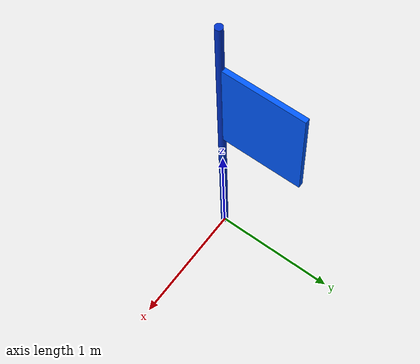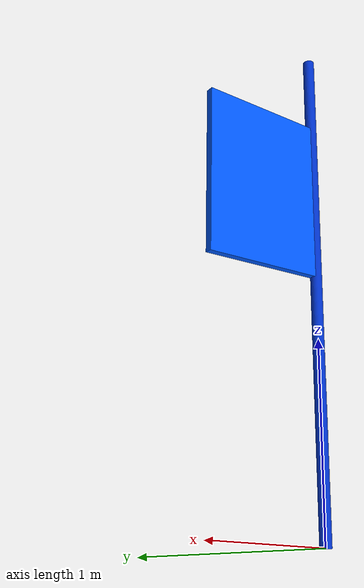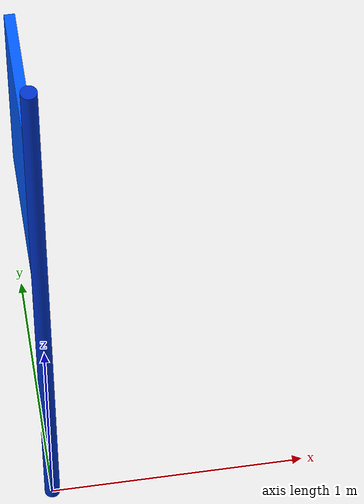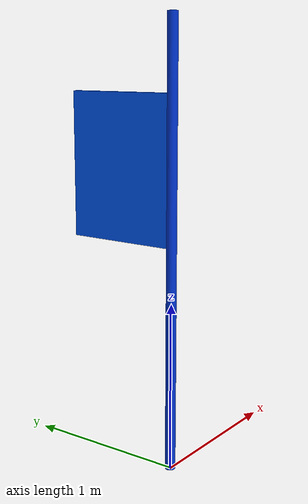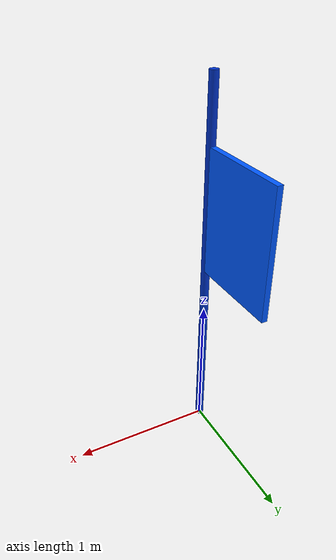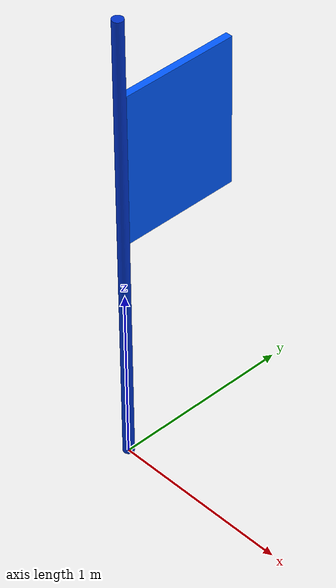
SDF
<?xml version="1.0" encoding="UTF-8"?>
<sdf version="1.9">
  <model name="robocup_obs5_flag">
    <static>true</static>
    <link name="pole">
      <pose>0 0 1.30 0 0 0</pose>
      <visual name="visual">
        <geometry><cylinder><radius>0.03</radius><length>2.60</length></cylinder></geometry>
        <material><diffuse>0.0 0.20 0.80 1</diffuse></material>
      </visual>
    </link>
    <link name="flag">
      <pose>0 0.34 1.75 0 0 0</pose>
      <visual name="visual">
        <geometry><box><size>0.04 0.68 0.85</size></box></geometry>
        <material><diffuse>0.0 0.35 1.0 1</diffuse></material>
      </visual>
    </link>
  </model>
</sdf>
